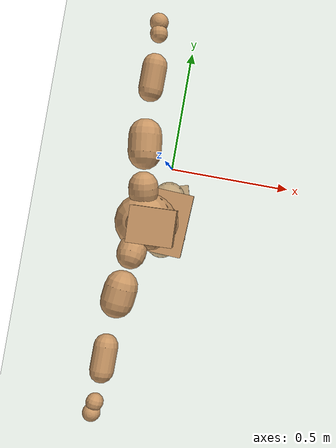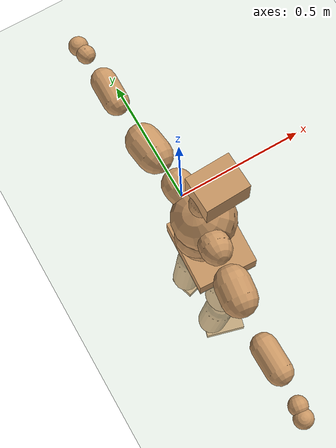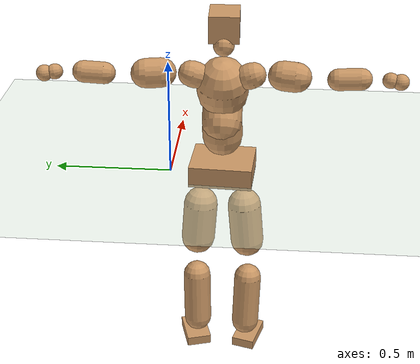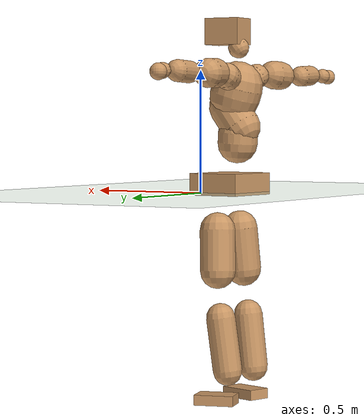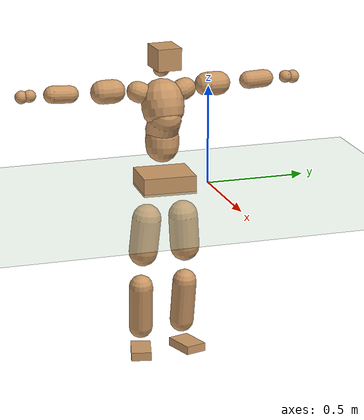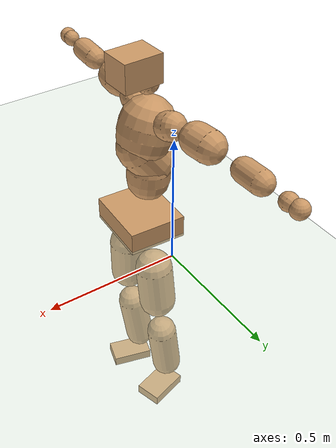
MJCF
<mujoco model="humanoid">
  <compiler coordinate="local" angle="radian"/>
  <default>
    <joint damping="0.0" armature="0.01" stiffness="0.0" limited="true"/>
    <geom conaffinity="1" condim="3" contype="7" margin="0.001" rgba="0.8 0.6 .4 1"/>
  </default>
  <asset>
    <texture type="skybox" builtin="gradient" rgb1=".4 .5 .6" rgb2="0 0 0" width="100" height="100"/>
    <texture builtin="flat" height="1278" mark="cross" markrgb="1 1 1" name="texgeom" random="0.01" rgb1="0.8 0.6 0.4" rgb2="0.8 0.6 0.4" type="cube" width="127"/>
    <texture builtin="checker" height="100" name="texplane" rgb1="0 0 0" rgb2="0.8 0.8 0.8" type="2d" width="100"/>
    <material name="MatPlane" reflectance="0.5" shininess="1" specular="1" texrepeat="60 60" texture="texplane"/>
    <material name="geom" texture="texgeom" texuniform="true"/>
  </asset>
  <worldbody>
    <light cutoff="100" diffuse="1 1 1" dir="-0 0 -1.3" directional="true" exponent="1" pos="0 0 1.3" specular=".1 .1 .1"/>
    <geom conaffinity="1" condim="3" name="floor" pos="0 0 0" rgba="0.8 0.9 0.8 1" size="100 100 .2" type="plane" material="MatPlane"/>
    <body name="Pelvis" pos="-0.0007 -0.2258 0.0455">
      <freejoint name="Pelvis"/>
      <geom type="box" contype="1" conaffinity="1" density="5359.375256" pos="-0.0048 0.0002 -0.0139" size="0.1125 0.1332 0.0457" quat="0.9997 0.0000 0.0000 -0.0243" name="Pelvis"/>
      <body name="L_Hip" pos="0.0035 0.0887 -0.0994">
        <joint name="L_Hip_x" type="hinge" pos="0 0 0" axis="1 0 0" stiffness="1600" damping="160" armature="0.02" range="-180.0000 180.0000"/>
        <joint name="L_Hip_y" type="hinge" pos="0 0 0" axis="0 1 0" stiffness="1600" damping="160" armature="0.02" range="-180.0000 180.0000"/>
        <joint name="L_Hip_z" type="hinge" pos="0 0 0" axis="0 0 1" stiffness="1600" damping="160" armature="0.02" range="-180.0000 180.0000"/>
        <geom type="capsule" contype="1" conaffinity="1" density="2040.816327" size="0.0736" fromto="-0.0052 0.0073 -0.1032 -0.0137 0.0194 -0.2729" name="L_Hip"/>
        <body name="L_Knee" pos="-0.0188 0.0267 -0.3761">
          <joint name="L_Knee_x" type="hinge" pos="0 0 0" axis="1 0 0" stiffness="1600" damping="160" armature="0.02" range="-180.0000 180.0000"/>
          <joint name="L_Knee_y" type="hinge" pos="0 0 0" axis="0 1 0" stiffness="1600" damping="160" armature="0.02" range="-180.0000 180.0000"/>
          <joint name="L_Knee_z" type="hinge" pos="0 0 0" axis="0 0 1" stiffness="1600" damping="160" armature="0.02" range="-180.0000 180.0000"/>
          <geom type="capsule" contype="1" conaffinity="1" density="1234.567901" size="0.0608" fromto="-0.0122 -0.0023 -0.0900 -0.0419 -0.0078 -0.3103" name="L_Knee"/>
          <body name="L_Ankle" pos="-0.0541 -0.0101 -0.4002">
            <joint name="L_Ankle_x" type="hinge" pos="0 0 0" axis="1 0 0" stiffness="1600" damping="160" armature="0.02" range="-180.0000 180.0000"/>
            <joint name="L_Ankle_y" type="hinge" pos="0 0 0" axis="0 1 0" stiffness="1600" damping="160" armature="0.02" range="-180.0000 180.0000"/>
            <joint name="L_Ankle_z" type="hinge" pos="0 0 0" axis="0 0 1" stiffness="1600" damping="160" armature="0.02" range="-180.0000 180.0000"/>
            <geom type="box" contype="1" conaffinity="1" density="999.999988" pos="0.0577 0.0170 -0.0291" size="0.0827 0.0543 0.0214" quat="0.9897 0.0000 0.0000 0.1430" name="L_Ankle"/>
            <body name="L_Toe" pos="0.1153 0.034 -0.0582">
              <joint name="L_Toe_x" type="hinge" pos="0 0 0" axis="1 0 0" stiffness="1000" damping="100" armature="0.02" range="-180.0000 180.0000"/>
              <joint name="L_Toe_y" type="hinge" pos="0 0 0" axis="0 1 0" stiffness="1000" damping="100" armature="0.02" range="-180.0000 180.0000"/>
              <joint name="L_Toe_z" type="hinge" pos="0 0 0" axis="0 0 1" stiffness="1000" damping="100" armature="0.02" range="-180.0000 180.0000"/>
              <geom type="box" contype="1" conaffinity="1" density="7887432.813289" pos="0.0000 0.0000 0.0305" size="0.001 0.0025 0.0011" quat="0.9889 0.0000 0.0000 0.1485" name="L_Toe"/>
            </body>
          </body>
        </body>
      </body>
      <body name="R_Hip" pos="0.0064 -0.0861 -0.1003">
        <joint name="R_Hip_x" type="hinge" pos="0 0 0" axis="1 0 0" stiffness="1600" damping="160" armature="0.02" range="-180.0000 180.0000"/>
        <joint name="R_Hip_y" type="hinge" pos="0 0 0" axis="0 1 0" stiffness="1600" damping="160" armature="0.02" range="-180.0000 180.0000"/>
        <joint name="R_Hip_z" type="hinge" pos="0 0 0" axis="0 0 1" stiffness="1600" damping="160" armature="0.02" range="-180.0000 180.0000"/>
        <geom type="capsule" contype="1" conaffinity="1" density="2040.816327" size="0.0727" fromto="-0.0054 -0.0094 -0.1022 -0.0147 -0.0255 -0.2790" name="R_Hip"/>
        <body name="R_Knee" pos="-0.02 -0.0349 -0.3812">
          <joint name="R_Knee_x" type="hinge" pos="0 0 0" axis="1 0 0" stiffness="1600" damping="160" armature="0.02" range="-180.0000 180.0000"/>
          <joint name="R_Knee_y" type="hinge" pos="0 0 0" axis="0 1 0" stiffness="1600" damping="160" armature="0.02" range="-180.0000 180.0000"/>
          <joint name="R_Knee_z" type="hinge" pos="0 0 0" axis="0 0 1" stiffness="1600" damping="160" armature="0.02" range="-180.0000 180.0000"/>
          <geom type="capsule" contype="1" conaffinity="1" density="1234.567901" size="0.0606" fromto="-0.0119 0.0025 -0.0898 -0.0416 0.0089 -0.3136" name="R_Knee"/>
          <body name="R_Ankle" pos="-0.0535 0.0114 -0.4033">
            <joint name="R_Ankle_x" type="hinge" pos="0 0 0" axis="1 0 0" stiffness="1600" damping="160" armature="0.02" range="-180.0000 180.0000"/>
            <joint name="R_Ankle_y" type="hinge" pos="0 0 0" axis="0 1 0" stiffness="1600" damping="160" armature="0.02" range="-180.0000 180.0000"/>
            <joint name="R_Ankle_z" type="hinge" pos="0 0 0" axis="0 0 1" stiffness="1600" damping="160" armature="0.02" range="-180.0000 180.0000"/>
            <geom type="box" contype="1" conaffinity="1" density="999.999989" pos="0.0599 -0.0164 -0.0258" size="0.0844 0.0505 0.0215" quat="0.9911 0.0000 0.0000 -0.1335" name="R_Ankle"/>
            <body name="R_Toe" pos="0.1198 -0.0329 -0.0515">
              <joint name="R_Toe_x" type="hinge" pos="0 0 0" axis="1 0 0" stiffness="1000" damping="100" armature="0.02" range="-180.0000 180.0000"/>
              <joint name="R_Toe_y" type="hinge" pos="0 0 0" axis="0 1 0" stiffness="1000" damping="100" armature="0.02" range="-180.0000 180.0000"/>
              <joint name="R_Toe_z" type="hinge" pos="0 0 0" axis="0 0 1" stiffness="1000" damping="100" armature="0.02" range="-180.0000 180.0000"/>
              <geom type="box" contype="1" conaffinity="1" density="7948500.630371" pos="0.0000 0.0000 0.0275" size="0.001 0.0024 0.0012" quat="0.9923 0.0000 0.0000 -0.1238" name="R_Toe"/>
            </body>
          </body>
        </body>
      </body>
      <body name="Torso" pos="-0.0389 -0.0013 0.1163">
        <joint name="Torso_x" type="hinge" pos="0 0 0" axis="1 0 0" stiffness="2000" damping="200" armature="0.02" range="-180.0000 180.0000"/>
        <joint name="Torso_y" type="hinge" pos="0 0 0" axis="0 1 0" stiffness="2000" damping="200" armature="0.02" range="-180.0000 180.0000"/>
        <joint name="Torso_z" type="hinge" pos="0 0 0" axis="0 0 1" stiffness="2000" damping="200" armature="0.02" range="-180.0000 180.0000"/>
        <geom type="capsule" contype="1" conaffinity="1" density="2040.816327" size="0.0836" fromto="-0.0062 0.0020 0.0833 -0.0030 0.0010 0.0400" name="Torso"/>
        <body name="Spine" pos="-0.0091 0.003 0.1233">
          <joint name="Spine_x" type="hinge" pos="0 0 0" axis="1 0 0" stiffness="2000" damping="200" armature="0.02" range="-180.0000 180.0000"/>
          <joint name="Spine_y" type="hinge" pos="0 0 0" axis="0 1 0" stiffness="2000" damping="200" armature="0.02" range="-180.0000 180.0000"/>
          <joint name="Spine_z" type="hinge" pos="0 0 0" axis="0 0 1" stiffness="2000" damping="200" armature="0.02" range="-180.0000 180.0000"/>
          <geom type="capsule" contype="1" conaffinity="1" density="2040.816327" size="0.0823" fromto="0.0488 -0.0001 0.0663 -0.0108 0.0000 -0.0147" name="Spine"/>
          <body name="Chest" pos="0.038 0 0.0516">
            <joint name="Chest_x" type="hinge" pos="0 0 0" axis="1 0 0" stiffness="2000" damping="200" armature="0.02" range="-180.0000 180.0000"/>
            <joint name="Chest_y" type="hinge" pos="0 0 0" axis="0 1 0" stiffness="2000" damping="200" armature="0.02" range="-180.0000 180.0000"/>
            <joint name="Chest_z" type="hinge" pos="0 0 0" axis="0 0 1" stiffness="2000" damping="200" armature="0.02" range="-180.0000 180.0000"/>
            <geom type="capsule" contype="1" conaffinity="1" density="2040.816327" size="0.106" fromto="-0.0318 -0.0015 0.1012 -0.0190 -0.0009 0.0605" name="Chest"/>
            <body name="Neck" pos="-0.0599 -0.005 0.2295">
              <joint name="Neck_x" type="hinge" pos="0 0 0" axis="1 0 0" stiffness="1000" damping="100" armature="0.02" range="-180.0000 180.0000"/>
              <joint name="Neck_y" type="hinge" pos="0 0 0" axis="0 1 0" stiffness="1000" damping="100" armature="0.02" range="-180.0000 180.0000"/>
              <joint name="Neck_z" type="hinge" pos="0 0 0" axis="0 0 1" stiffness="1000" damping="100" armature="0.02" range="-180.0000 180.0000"/>
              <geom type="capsule" contype="1" conaffinity="1" density="1000" size="0.0432" fromto="0.0263 -0.0000 0.0343 0.0247 -0.0000 0.0321" name="Neck"/>
              <body name="Head" pos="0.051 0 0.0665">
                <joint name="Head_x" type="hinge" pos="0 0 0" axis="1 0 0" stiffness="1000" damping="100" armature="0.02" range="-180.0000 180.0000"/>
                <joint name="Head_y" type="hinge" pos="0 0 0" axis="0 1 0" stiffness="1000" damping="100" armature="0.02" range="-180.0000 180.0000"/>
                <joint name="Head_z" type="hinge" pos="0 0 0" axis="0 0 1" stiffness="1000" damping="100" armature="0.02" range="-180.0000 180.0000"/>
                <geom type="box" contype="1" conaffinity="1" density="2249.999901" pos="0.0265 0.0010 0.0342" size="0.0761 0.061 0.0553" quat="0.9998 0.0000 0.0000 0.0184" name="Head"/>
              </body>
            </body>
            <body name="L_Thorax" pos="-0.044 0.0735 0.127">
              <joint name="L_Thorax_x" type="hinge" pos="0 0 0" axis="1 0 0" stiffness="1000" damping="100" armature="0.02" range="-180.0000 180.0000"/>
              <joint name="L_Thorax_y" type="hinge" pos="0 0 0" axis="0 1 0" stiffness="1000" damping="100" armature="0.02" range="-180.0000 180.0000"/>
              <joint name="L_Thorax_z" type="hinge" pos="0 0 0" axis="0 0 1" stiffness="1000" damping="100" armature="0.02" range="-180.0000 180.0000"/>
              <geom type="capsule" contype="1" conaffinity="1" density="1000" size="0.0534" fromto="-0.0074 0.0497 0.0179 -0.0042 0.0285 0.0103" name="L_Thorax"/>
              <body name="L_Shoulder" pos="-0.0116 0.0783 0.0281">
                <joint name="L_Shoulder_x" type="hinge" pos="0 0 0" axis="1 0 0" stiffness="1000" damping="100" armature="0.02" range="-720.0000 720.0000"/>
                <joint name="L_Shoulder_y" type="hinge" pos="0 0 0" axis="0 1 0" stiffness="1000" damping="100" armature="0.02" range="-720.0000 720.0000"/>
                <joint name="L_Shoulder_z" type="hinge" pos="0 0 0" axis="0 0 1" stiffness="1000" damping="100" armature="0.02" range="-720.0000 720.0000"/>
                <geom type="capsule" contype="1" conaffinity="1" density="1000" size="0.0602" fromto="-0.0115 0.0894 -0.0028 -0.0196 0.1519 -0.0047" name="L_Shoulder"/>
                <body name="L_Elbow" pos="-0.0311 0.2413 -0.0075">
                  <joint name="L_Elbow_x" type="hinge" pos="0 0 0" axis="1 0 0" stiffness="1000" damping="100" armature="0.02" range="-720.0000 720.0000"/>
                  <joint name="L_Elbow_y" type="hinge" pos="0 0 0" axis="0 1 0" stiffness="1000" damping="100" armature="0.02" range="-720.0000 720.0000"/>
                  <joint name="L_Elbow_z" type="hinge" pos="0 0 0" axis="0 0 1" stiffness="1000" damping="100" armature="0.02" range="-720.0000 720.0000"/>
                  <geom type="capsule" contype="1" conaffinity="1" density="1000" size="0.0441" fromto="0.0007 0.0740 0.0030 0.0016 0.1594 0.0065" name="L_Elbow"/>
                  <body name="L_Wrist" pos="0.0024 0.2335 0.0095">
                    <joint name="L_Wrist_x" type="hinge" pos="0 0 0" axis="1 0 0" stiffness="600" damping="60" armature="0.02" range="-180.0000 180.0000"/>
                    <joint name="L_Wrist_y" type="hinge" pos="0 0 0" axis="0 1 0" stiffness="600" damping="60" armature="0.02" range="-180.0000 180.0000"/>
                    <joint name="L_Wrist_z" type="hinge" pos="0 0 0" axis="0 0 1" stiffness="600" damping="60" armature="0.02" range="-180.0000 180.0000"/>
                    <geom type="capsule" contype="1" conaffinity="1" density="1000" size="0.0316" fromto="-0.0065 0.0400 -0.0048 -0.0069 0.0420 -0.0051" name="L_Wrist"/>
                    <body name="L_Hand" pos="-0.0134 0.082 -0.0099">
                      <joint name="L_Hand_x" type="hinge" pos="0 0 0" axis="1 0 0" stiffness="600" damping="60" armature="0.02" range="-180.0000 180.0000"/>
                      <joint name="L_Hand_y" type="hinge" pos="0 0 0" axis="0 1 0" stiffness="600" damping="60" armature="0.02" range="-180.0000 180.0000"/>
                      <joint name="L_Hand_z" type="hinge" pos="0 0 0" axis="0 0 1" stiffness="600" damping="60" armature="0.02" range="-180.0000 180.0000"/>
                      <geom type="sphere" contype="1" conaffinity="1" density="1000" size="0.0333" pos="0.0000 0.0000 0.0000" name="L_Hand"/>
                    </body>
                  </body>
                </body>
              </body>
            </body>
            <body name="R_Thorax" pos="-0.0483 -0.0756 0.1283">
              <joint name="R_Thorax_x" type="hinge" pos="0 0 0" axis="1 0 0" stiffness="1000" damping="100" armature="0.02" range="-180.0000 180.0000"/>
              <joint name="R_Thorax_y" type="hinge" pos="0 0 0" axis="0 1 0" stiffness="1000" damping="100" armature="0.02" range="-180.0000 180.0000"/>
              <joint name="R_Thorax_z" type="hinge" pos="0 0 0" axis="0 0 1" stiffness="1000" damping="100" armature="0.02" range="-180.0000 180.0000"/>
              <geom type="capsule" contype="1" conaffinity="1" density="1000" size="0.0522" fromto="-0.0040 -0.0488 0.0181 -0.0024 -0.0295 0.0109" name="R_Thorax"/>
              <body name="R_Shoulder" pos="-0.0065 -0.0782 0.029">
                <joint name="R_Shoulder_x" type="hinge" pos="0 0 0" axis="1 0 0" stiffness="1000" damping="100" armature="0.02" range="-720.0000 720.0000"/>
                <joint name="R_Shoulder_y" type="hinge" pos="0 0 0" axis="0 1 0" stiffness="1000" damping="100" armature="0.02" range="-720.0000 720.0000"/>
                <joint name="R_Shoulder_z" type="hinge" pos="0 0 0" axis="0 0 1" stiffness="1000" damping="100" armature="0.02" range="-720.0000 720.0000"/>
                <geom type="capsule" contype="1" conaffinity="1" density="1000" size="0.0601" fromto="-0.0108 -0.0893 -0.0035 -0.0172 -0.1429 -0.0056" name="R_Shoulder"/>
                <body name="R_Elbow" pos="-0.028 -0.2322 -0.0091">
                  <joint name="R_Elbow_x" type="hinge" pos="0 0 0" axis="1 0 0" stiffness="1000" damping="100" armature="0.02" range="-720.0000 720.0000"/>
                  <joint name="R_Elbow_y" type="hinge" pos="0 0 0" axis="0 1 0" stiffness="1000" damping="100" armature="0.02" range="-720.0000 720.0000"/>
                  <joint name="R_Elbow_z" type="hinge" pos="0 0 0" axis="0 0 1" stiffness="1000" damping="100" armature="0.02" range="-720.0000 720.0000"/>
                  <geom type="capsule" contype="1" conaffinity="1" density="1000" size="0.0438" fromto="0.0002 -0.0737 0.0040 0.0005 -0.1621 0.0088" name="R_Elbow"/>
                  <body name="R_Wrist" pos="0.0008 -0.2358 0.0127">
                    <joint name="R_Wrist_x" type="hinge" pos="0 0 0" axis="1 0 0" stiffness="600" damping="60" armature="0.02" range="-180.0000 180.0000"/>
                    <joint name="R_Wrist_y" type="hinge" pos="0 0 0" axis="0 1 0" stiffness="600" damping="60" armature="0.02" range="-180.0000 180.0000"/>
                    <joint name="R_Wrist_z" type="hinge" pos="0 0 0" axis="0 0 1" stiffness="600" damping="60" armature="0.02" range="-180.0000 180.0000"/>
                    <geom type="capsule" contype="1" conaffinity="1" density="1000" size="0.0315" fromto="-0.0051 -0.0388 -0.0035 -0.0054 -0.0407 -0.0036" name="R_Wrist"/>
                    <body name="R_Hand" pos="-0.0105 -0.0795 -0.0071">
                      <joint name="R_Hand_x" type="hinge" pos="0 0 0" axis="1 0 0" stiffness="600" damping="60" armature="0.02" range="-180.0000 180.0000"/>
                      <joint name="R_Hand_y" type="hinge" pos="0 0 0" axis="0 1 0" stiffness="600" damping="60" armature="0.02" range="-180.0000 180.0000"/>
                      <joint name="R_Hand_z" type="hinge" pos="0 0 0" axis="0 0 1" stiffness="600" damping="60" armature="0.02" range="-180.0000 180.0000"/>
                      <geom type="sphere" contype="1" conaffinity="1" density="1000" size="0.0324" pos="0.0000 0.0000 0.0000" name="R_Hand"/>
                    </body>
                  </body>
                </body>
              </body>
            </body>
          </body>
        </body>
      </body>
    </body>
  </worldbody>
  <actuator>
    <motor name="L_Hip_x" joint="L_Hip_x" gear="500"/>
    <motor name="L_Hip_y" joint="L_Hip_y" gear="500"/>
    <motor name="L_Hip_z" joint="L_Hip_z" gear="500"/>
    <motor name="L_Knee_x" joint="L_Knee_x" gear="500"/>
    <motor name="L_Knee_y" joint="L_Knee_y" gear="500"/>
    <motor name="L_Knee_z" joint="L_Knee_z" gear="500"/>
    <motor name="L_Ankle_x" joint="L_Ankle_x" gear="500"/>
    <motor name="L_Ankle_y" joint="L_Ankle_y" gear="500"/>
    <motor name="L_Ankle_z" joint="L_Ankle_z" gear="500"/>
    <motor name="L_Toe_x" joint="L_Toe_x" gear="500"/>
    <motor name="L_Toe_y" joint="L_Toe_y" gear="500"/>
    <motor name="L_Toe_z" joint="L_Toe_z" gear="500"/>
    <motor name="R_Hip_x" joint="R_Hip_x" gear="500"/>
    <motor name="R_Hip_y" joint="R_Hip_y" gear="500"/>
    <motor name="R_Hip_z" joint="R_Hip_z" gear="500"/>
    <motor name="R_Knee_x" joint="R_Knee_x" gear="500"/>
    <motor name="R_Knee_y" joint="R_Knee_y" gear="500"/>
    <motor name="R_Knee_z" joint="R_Knee_z" gear="500"/>
    <motor name="R_Ankle_x" joint="R_Ankle_x" gear="500"/>
    <motor name="R_Ankle_y" joint="R_Ankle_y" gear="500"/>
    <motor name="R_Ankle_z" joint="R_Ankle_z" gear="500"/>
    <motor name="R_Toe_x" joint="R_Toe_x" gear="500"/>
    <motor name="R_Toe_y" joint="R_Toe_y" gear="500"/>
    <motor name="R_Toe_z" joint="R_Toe_z" gear="500"/>
    <motor name="Torso_x" joint="Torso_x" gear="500"/>
    <motor name="Torso_y" joint="Torso_y" gear="500"/>
    <motor name="Torso_z" joint="Torso_z" gear="500"/>
    <motor name="Spine_x" joint="Spine_x" gear="500"/>
    <motor name="Spine_y" joint="Spine_y" gear="500"/>
    <motor name="Spine_z" joint="Spine_z" gear="500"/>
    <motor name="Chest_x" joint="Chest_x" gear="500"/>
    <motor name="Chest_y" joint="Chest_y" gear="500"/>
    <motor name="Chest_z" joint="Chest_z" gear="500"/>
    <motor name="Neck_x" joint="Neck_x" gear="500"/>
    <motor name="Neck_y" joint="Neck_y" gear="500"/>
    <motor name="Neck_z" joint="Neck_z" gear="500"/>
    <motor name="Head_x" joint="Head_x" gear="500"/>
    <motor name="Head_y" joint="Head_y" gear="500"/>
    <motor name="Head_z" joint="Head_z" gear="500"/>
    <motor name="L_Thorax_x" joint="L_Thorax_x" gear="500"/>
    <motor name="L_Thorax_y" joint="L_Thorax_y" gear="500"/>
    <motor name="L_Thorax_z" joint="L_Thorax_z" gear="500"/>
    <motor name="L_Shoulder_x" joint="L_Shoulder_x" gear="500"/>
    <motor name="L_Shoulder_y" joint="L_Shoulder_y" gear="500"/>
    <motor name="L_Shoulder_z" joint="L_Shoulder_z" gear="500"/>
    <motor name="L_Elbow_x" joint="L_Elbow_x" gear="500"/>
    <motor name="L_Elbow_y" joint="L_Elbow_y" gear="500"/>
    <motor name="L_Elbow_z" joint="L_Elbow_z" gear="500"/>
    <motor name="L_Wrist_x" joint="L_Wrist_x" gear="500"/>
    <motor name="L_Wrist_y" joint="L_Wrist_y" gear="500"/>
    <motor name="L_Wrist_z" joint="L_Wrist_z" gear="500"/>
    <motor name="L_Hand_x" joint="L_Hand_x" gear="500"/>
    <motor name="L_Hand_y" joint="L_Hand_y" gear="500"/>
    <motor name="L_Hand_z" joint="L_Hand_z" gear="500"/>
    <motor name="R_Thorax_x" joint="R_Thorax_x" gear="500"/>
    <motor name="R_Thorax_y" joint="R_Thorax_y" gear="500"/>
    <motor name="R_Thorax_z" joint="R_Thorax_z" gear="500"/>
    <motor name="R_Shoulder_x" joint="R_Shoulder_x" gear="500"/>
    <motor name="R_Shoulder_y" joint="R_Shoulder_y" gear="500"/>
    <motor name="R_Shoulder_z" joint="R_Shoulder_z" gear="500"/>
    <motor name="R_Elbow_x" joint="R_Elbow_x" gear="500"/>
    <motor name="R_Elbow_y" joint="R_Elbow_y" gear="500"/>
    <motor name="R_Elbow_z" joint="R_Elbow_z" gear="500"/>
    <motor name="R_Wrist_x" joint="R_Wrist_x" gear="500"/>
    <motor name="R_Wrist_y" joint="R_Wrist_y" gear="500"/>
    <motor name="R_Wrist_z" joint="R_Wrist_z" gear="500"/>
    <motor name="R_Hand_x" joint="R_Hand_x" gear="500"/>
    <motor name="R_Hand_y" joint="R_Hand_y" gear="500"/>
    <motor name="R_Hand_z" joint="R_Hand_z" gear="500"/>
  </actuator>
  <contact>
    <exclude body1="Torso" body2="Chest"/>
    <exclude body1="Head" body2="Chest"/>
    <exclude body1="R_Knee" body2="R_Toe"/>
    <exclude body1="R_Knee" body2="L_Ankle"/>
    <exclude body1="R_Knee" body2="L_Toe"/>
    <exclude body1="L_Knee" body2="L_Toe"/>
    <exclude body1="L_Knee" body2="R_Ankle"/>
    <exclude body1="L_Knee" body2="R_Toe"/>
    <exclude body1="L_Shoulder" body2="Chest"/>
    <exclude body1="R_Shoulder" body2="Chest"/>
  </contact>
  <sensor/>
  <size njmax="700" nconmax="700"/>
</mujoco>
